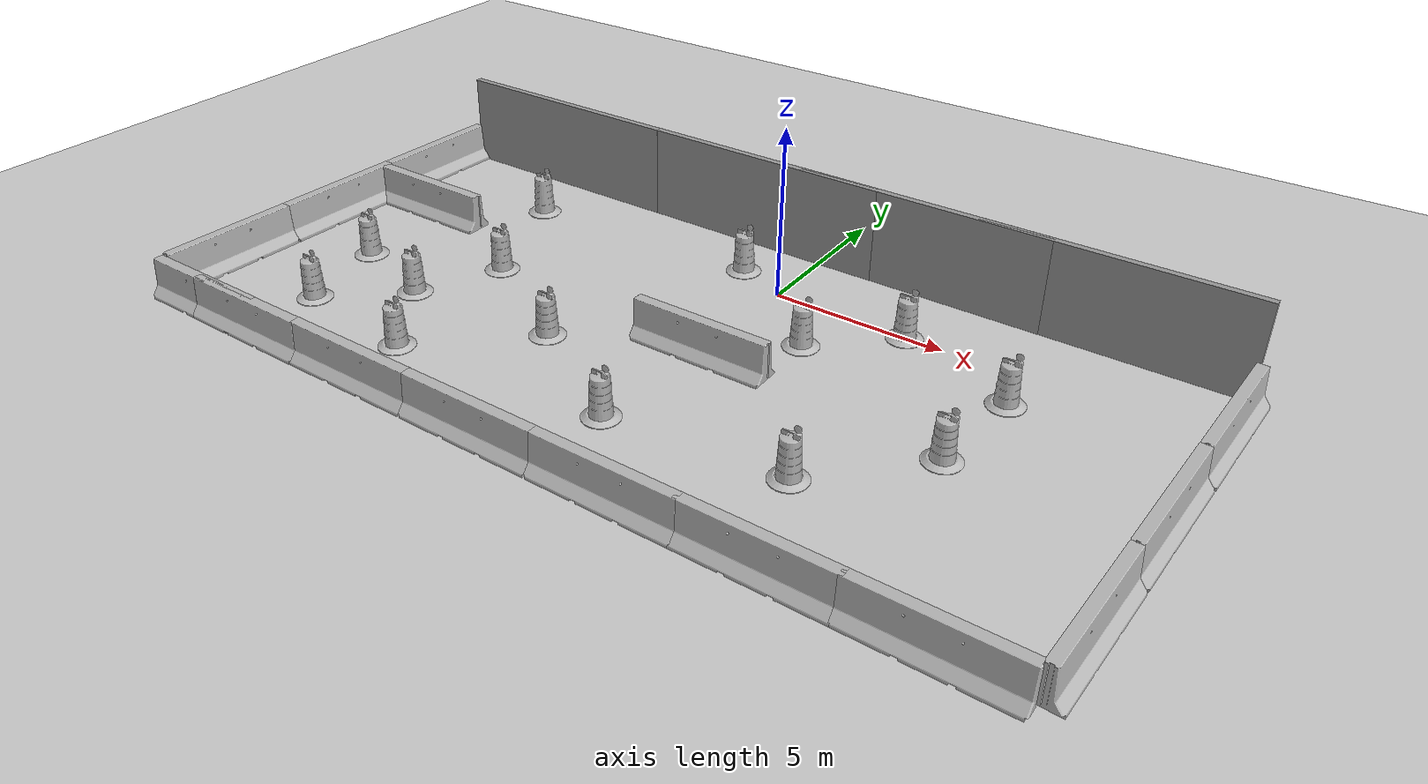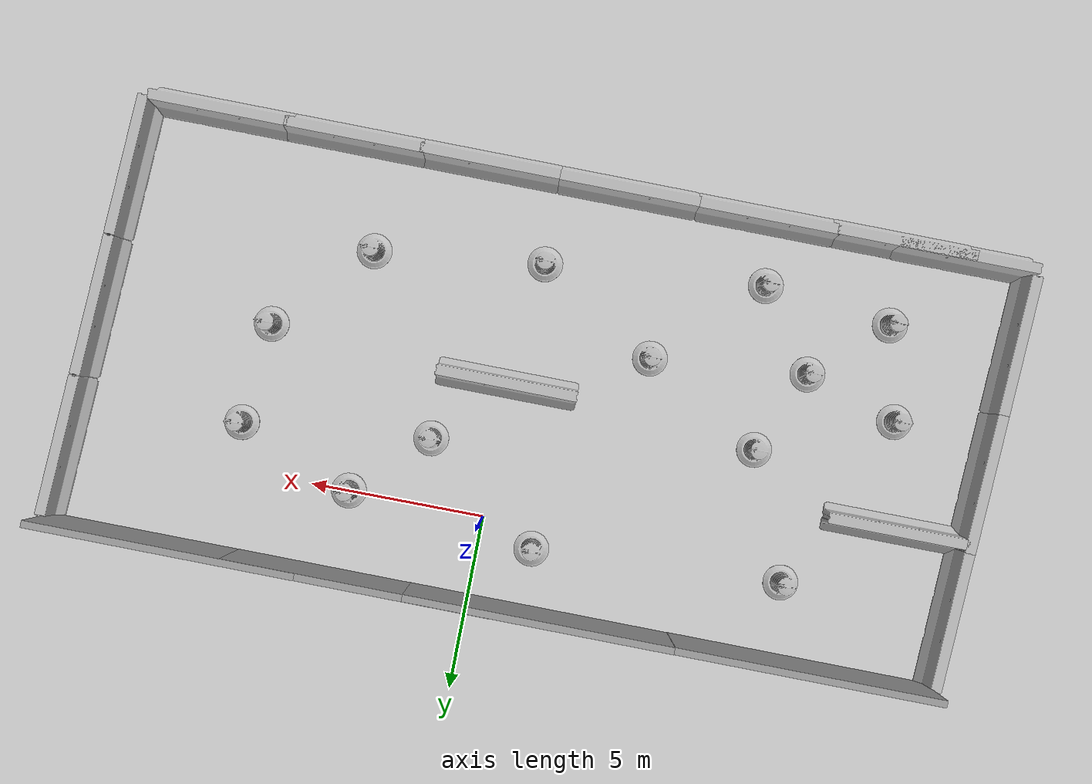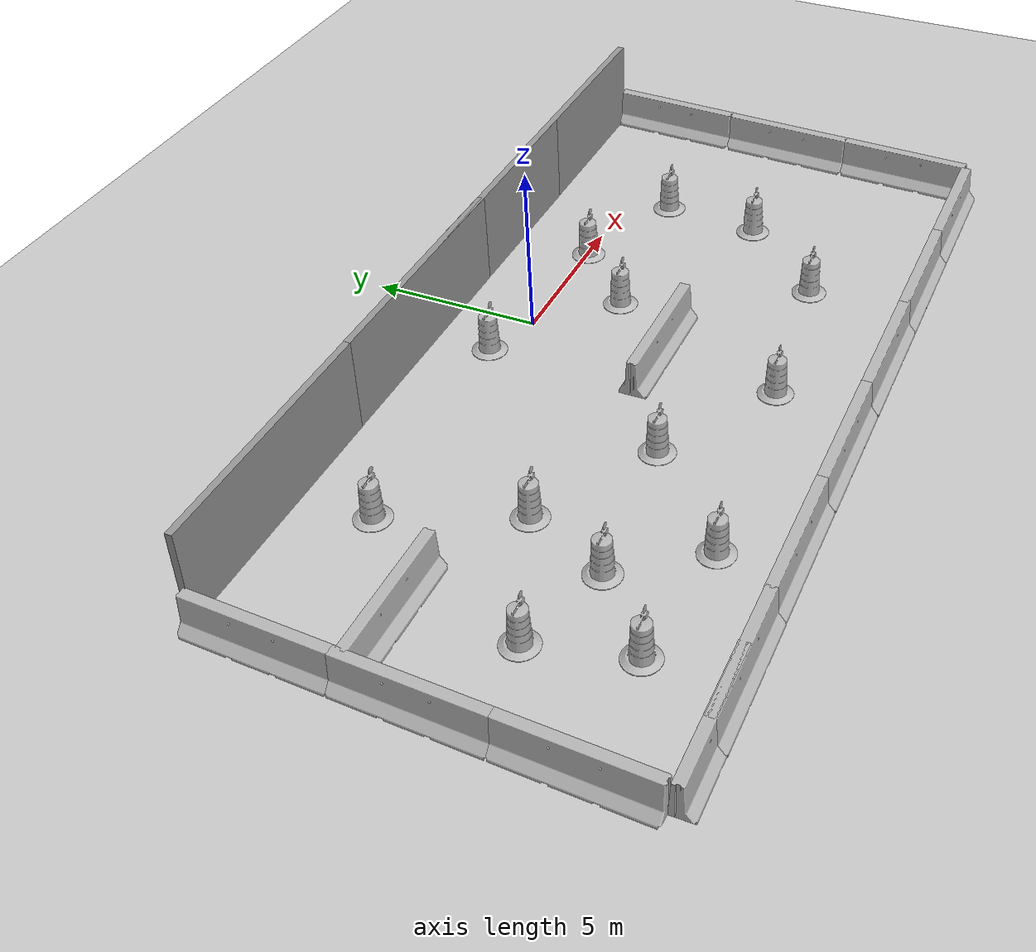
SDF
<sdf version="1.7">
 <world name="default">
  <light name="sun" type="directional">
   <pose>0 0 10 0 -0 0</pose>
   <diffuse>0.8 0.8 0.8 1</diffuse>
   <specular>0.2 0.2 0.2 1</specular>
   <attenuation>
    <range>1000</range>
    <constant>0.9</constant>
    <linear>0.01</linear>
    <quadratic>0.001</quadratic>
   </attenuation>
   <direction>-0.5 0.1 -0.9</direction>
   <spot><inner_angle>0</inner_angle><outer_angle>0</outer_angle><falloff>0</falloff></spot>
  </light>
  <model name="ground_plane">
   <static>1</static>
   <link name="link">
    <collision name="collision">
     <geometry><plane><normal>0 0 1</normal><size>100 100</size></plane></geometry>
     <surface><friction><ode><mu>100</mu><mu2>50</mu2></ode></friction></surface>
    </collision>
    <visual name="visual">
     <cast_shadows>0</cast_shadows>
     <geometry><plane><normal>0 0 1</normal><size>100 100</size></plane></geometry>
     <material>
      <script><uri>file://media/materials/scripts/gazebo.material</uri><name>Gazebo/Grey</name></script>
     </material>
    </visual>
    <velocity_decay><linear>0</linear><angular>0</angular></velocity_decay>
   </link>
  </model>
  <physics type="ode">
   <max_step_size>0.001</max_step_size>
   <real_time_factor>1</real_time_factor>
   <real_time_update_rate>1000</real_time_update_rate>
  </physics>
  <scene><ambient>0.4 0.4 0.4 1</ambient><background>0.7 0.7 0.7 1</background><shadows>1</shadows></scene>
  <spherical_coordinates>
   <surface_model>EARTH_WGS84</surface_model>
   <latitude_deg>0</latitude_deg>
   <longitude_deg>0</longitude_deg>
   <elevation>0</elevation>
   <heading_deg>0</heading_deg>
  </spherical_coordinates>
  <model name="Construction Barrel">
   <link name="link">
    <inertial>
     <pose>0 0 0.4 0 -0 0</pose>
     <mass>500</mass>
     <inertia><ixx>51.2096</ixx><iyy>51.2096</iyy><izz>25</izz><ixy>0</ixy><ixz>0</ixz><iyz>0</iyz></inertia>
    </inertial>
    <collision name="collision">
     <geometry><mesh><uri>model://construction_barrel/meshes/construction_barrel.dae</uri></mesh></geometry>
    </collision>
    <visual name="visual">
     <geometry><mesh><uri>model://construction_barrel/meshes/construction_barrel.dae</uri></mesh></geometry>
    </visual>
    <velocity_decay><linear>0</linear><angular>0</angular></velocity_decay>
   </link>
   <pose>-1.55017 0.617429 -2e-06 6e-06 2e-06 -0.002034</pose>
   <static>0</static>
  </model>
  <model name="Construction Barrel_0">
   <link name="link">
    <inertial>
     <pose>0 0 0.4 0 -0 0</pose>
     <mass>500</mass>
     <inertia><ixx>51.2096</ixx><iyy>51.2096</iyy><izz>25</izz><ixy>0</ixy><ixz>0</ixz><iyz>0</iyz></inertia>
    </inertial>
    <collision name="collision">
     <geometry><mesh><uri>model://construction_barrel/meshes/construction_barrel.dae</uri></mesh></geometry>
    </collision>
    <visual name="visual">
     <geometry><mesh><uri>model://construction_barrel/meshes/construction_barrel.dae</uri></mesh></geometry>
    </visual>
    <velocity_decay><linear>0</linear><angular>0</angular></velocity_decay>
   </link>
   <pose>4.51376 -6.91204 -3e-06 3e-06 -6e-06 -0.002048</pose>
   <static>0</static>
  </model>
  <model name="Construction Barrel_3">
   <link name="link">
    <inertial>
     <pose>0 0 0.4 0 -0 0</pose>
     <mass>500</mass>
     <inertia><ixx>51.2096</ixx><iyy>51.2096</iyy><izz>25</izz><ixy>0</ixy><ixz>0</ixz><iyz>0</iyz></inertia>
    </inertial>
    <collision name="collision">
     <geometry><mesh><uri>model://construction_barrel/meshes/construction_barrel.dae</uri></mesh></geometry>
    </collision>
    <visual name="visual">
     <geometry><mesh><uri>model://construction_barrel/meshes/construction_barrel.dae</uri></mesh></geometry>
    </visual>
    <velocity_decay><linear>0</linear><angular>0</angular></velocity_decay>
   </link>
   <pose>7.31122 -1.35796 -2e-06 -1e-06 -7e-06 -0.001846</pose>
   <static>0</static>
  </model>
  <model name="Construction Barrel_5">
   <link name="link">
    <inertial>
     <pose>0 0 0.4 0 -0 0</pose>
     <mass>500</mass>
     <inertia><ixx>51.2096</ixx><iyy>51.2096</iyy><izz>25</izz><ixy>0</ixy><ixz>0</ixz><iyz>0</iyz></inertia>
    </inertial>
    <collision name="collision">
     <geometry><mesh><uri>model://construction_barrel/meshes/construction_barrel.dae</uri></mesh></geometry>
    </collision>
    <visual name="visual">
     <geometry><mesh><uri>model://construction_barrel/meshes/construction_barrel.dae</uri></mesh></geometry>
    </visual>
    <velocity_decay><linear>0</linear><angular>0</angular></velocity_decay>
   </link>
   <pose>-7.29418 -3.4004 -3e-06 3e-06 -6e-06 -0.001679</pose>
   <static>0</static>
  </model>
  <model name="Construction Barrel_7">
   <link name="link">
    <inertial>
     <pose>0 0 0.4 0 -0 0</pose>
     <mass>500</mass>
     <inertia><ixx>51.2096</ixx><iyy>51.2096</iyy><izz>25</izz><ixy>0</ixy><ixz>0</ixz><iyz>0</iyz></inertia>
    </inertial>
    <collision name="collision">
     <geometry><mesh><uri>model://construction_barrel/meshes/construction_barrel.dae</uri></mesh></geometry>
    </collision>
    <visual name="visual">
     <geometry><mesh><uri>model://construction_barrel/meshes/construction_barrel.dae</uri></mesh></geometry>
    </visual>
    <velocity_decay><linear>0</linear><angular>0</angular></velocity_decay>
   </link>
   <pose>-11.0942 -4.95858 -4e-06 5e-06 9e-06 -0.001599</pose>
   <static>0</static>
  </model>
  <model name="Construction Barrel_8">
   <link name="link">
    <inertial>
     <pose>0 0 0.4 0 -0 0</pose>
     <mass>500</mass>
     <inertia><ixx>51.2096</ixx><iyy>51.2096</iyy><izz>25</izz><ixy>0</ixy><ixz>0</ixz><iyz>0</iyz></inertia>
    </inertial>
    <collision name="collision">
     <geometry><mesh><uri>model://construction_barrel/meshes/construction_barrel.dae</uri></mesh></geometry>
    </collision>
    <visual name="visual">
     <geometry><mesh><uri>model://construction_barrel/meshes/construction_barrel.dae</uri></mesh></geometry>
    </visual>
    <velocity_decay><linear>0</linear><angular>0</angular></velocity_decay>
   </link>
   <pose>1.88274 -1.94441 0 0 0 -0.001545</pose>
   <static>0</static>
  </model>
  <model name="Construction Barrel_10">
   <link name="link">
    <inertial>
     <pose>0 0 0.4 0 -0 0</pose>
     <mass>500</mass>
     <inertia><ixx>51.2096</ixx><iyy>51.2096</iyy><izz>25</izz><ixy>0</ixy><ixz>0</ixz><iyz>0</iyz></inertia>
    </inertial>
    <collision name="collision">
     <geometry><mesh><uri>model://construction_barrel/meshes/construction_barrel.dae</uri></mesh></geometry>
    </collision>
    <visual name="visual">
     <geometry><mesh><uri>model://construction_barrel/meshes/construction_barrel.dae</uri></mesh></geometry>
    </visual>
    <velocity_decay><linear>0</linear><angular>0</angular></velocity_decay>
   </link>
   <pose>-0.376544 -7.48327 -3e-06 -2e-06 9e-06 -0.001422</pose>
   <static>0</static>
  </model>
  <model name="Construction Barrel_12">
   <link name="link">
    <inertial>
     <pose>0 0 0.4 0 -0 0</pose>
     <mass>500</mass>
     <inertia><ixx>51.2096</ixx><iyy>51.2096</iyy><izz>25</izz><ixy>0</ixy><ixz>0</ixz><iyz>0</iyz></inertia>
    </inertial>
    <collision name="collision">
     <geometry><mesh><uri>model://construction_barrel/meshes/construction_barrel.dae</uri></mesh></geometry>
    </collision>
    <visual name="visual">
     <geometry><mesh><uri>model://construction_barrel/meshes/construction_barrel.dae</uri></mesh></geometry>
    </visual>
    <velocity_decay><linear>0</linear><angular>0</angular></velocity_decay>
   </link>
   <pose>-8.38586 -5.82203 1e-06 -1e-06 -2e-06 -0.001309</pose>
   <static>0</static>
  </model>
  <model name="Construction Barrel_13">
   <link name="link">
    <inertial>
     <pose>0 0 0.4 0 -0 0</pose>
     <mass>500</mass>
     <inertia><ixx>51.2096</ixx><iyy>51.2096</iyy><izz>25</izz><ixy>0</ixy><ixz>0</ixz><iyz>0</iyz></inertia>
    </inertial>
    <collision name="collision">
     <geometry><mesh><uri>model://construction_barrel/meshes/construction_barrel.dae</uri></mesh></geometry>
    </collision>
    <visual name="visual">
     <geometry><mesh><uri>model://construction_barrel/meshes/construction_barrel.dae</uri></mesh></geometry>
    </visual>
    <velocity_decay><linear>0</linear><angular>0</angular></velocity_decay>
   </link>
   <pose>7.01502 -4.29452 1e-06 -1e-06 -2e-06 -0.001219</pose>
   <static>0</static>
  </model>
  <model name="Construction Barrel_15">
   <link name="link">
    <inertial>
     <pose>0 0 0.4 0 -0 0</pose>
     <mass>500</mass>
     <inertia><ixx>51.2096</ixx><iyy>51.2096</iyy><izz>25</izz><ixy>0</ixy><ixz>0</ixz><iyz>0</iyz></inertia>
    </inertial>
    <collision name="collision">
     <geometry><mesh><uri>model://construction_barrel/meshes/construction_barrel.dae</uri></mesh></geometry>
    </collision>
    <visual name="visual">
     <geometry><mesh><uri>model://construction_barrel/meshes/construction_barrel.dae</uri></mesh></geometry>
    </visual>
    <velocity_decay><linear>0</linear><angular>0</angular></velocity_decay>
   </link>
   <pose>-6.72385 -8.08925 1e-06 -1e-06 -2e-06 -0.00112</pose>
   <static>0</static>
  </model>
  <model name="Construction Barrel_16">
   <link name="link">
    <inertial>
     <pose>0 0 0.4 0 -0 0</pose>
     <mass>500</mass>
     <inertia><ixx>51.2096</ixx><iyy>51.2096</iyy><izz>25</izz><ixy>0</ixy><ixz>0</ixz><iyz>0</iyz></inertia>
    </inertial>
    <collision name="collision">
     <geometry><mesh><uri>model://construction_barrel/meshes/construction_barrel.dae</uri></mesh></geometry>
    </collision>
    <visual name="visual">
     <geometry><mesh><uri>model://construction_barrel/meshes/construction_barrel.dae</uri></mesh></geometry>
    </visual>
    <velocity_decay><linear>0</linear><angular>0</angular></velocity_decay>
   </link>
   <pose>-8.76802 0.196695 1e-06 -1e-06 -2e-06 -0.001057</pose>
   <static>0</static>
  </model>
  <model name="jersey_barrier">
   <static>1</static>
   <link name="link">
    <visual name="visual">
     <geometry><mesh><uri>model://jersey_barrier/meshes/jersey_barrier.dae</uri></mesh></geometry>
    </visual>
    <collision name="upright">
     <pose>0 0 0.5715 0 -0 0</pose>
     <geometry><box><size>4.06542 0.3063 1.143</size></box></geometry>
    </collision>
    <collision name="base">
     <pose>0 0 0.032258 0 -0 0</pose>
     <geometry><box><size>4.06542 0.8107 0.064516</size></box></geometry>
    </collision>
    <collision name="base2">
     <pose>0 0 0.1 0 -0 0</pose>
     <geometry><box><size>4.06542 0.65 0.1</size></box></geometry>
    </collision>
    <collision name="base3">
     <pose>0 0 0.2 0 -0 0</pose>
     <geometry><box><size>4.06542 0.5 0.1</size></box></geometry>
    </collision>
    <collision name="left-angle">
     <pose>0 -0.224 0.2401 0.9 -0 0</pose>
     <geometry><box><size>4.06542 0.5 0.064516</size></box></geometry>
    </collision>
    <collision name="right-angle">
     <pose>0 0.224 0.2401 -0.9 0 0</pose>
     <geometry><box><size>4.06542 0.5 0.064516</size></box></geometry>
    </collision>
    <velocity_decay><linear>0</linear><angular>0</angular></velocity_decay>
   </link>
   <pose>0.038315 -3.90392 0 0 -0 0</pose>
  </model>
  <model name="jersey_barrier_0">
   <static>1</static>
   <link name="link">
    <visual name="visual">
     <geometry><mesh><uri>model://jersey_barrier/meshes/jersey_barrier.dae</uri></mesh></geometry>
    </visual>
    <collision name="upright">
     <pose>0 0 0.5715 0 -0 0</pose>
     <geometry><box><size>4.06542 0.3063 1.143</size></box></geometry>
    </collision>
    <collision name="base">
     <pose>0 0 0.032258 0 -0 0</pose>
     <geometry><box><size>4.06542 0.8107 0.064516</size></box></geometry>
    </collision>
    <collision name="base2">
     <pose>0 0 0.1 0 -0 0</pose>
     <geometry><box><size>4.06542 0.65 0.1</size></box></geometry>
    </collision>
    <collision name="base3">
     <pose>0 0 0.2 0 -0 0</pose>
     <geometry><box><size>4.06542 0.5 0.1</size></box></geometry>
    </collision>
    <collision name="left-angle">
     <pose>0 -0.224 0.2401 0.9 -0 0</pose>
     <geometry><box><size>4.06542 0.5 0.064516</size></box></geometry>
    </collision>
    <collision name="right-angle">
     <pose>0 0.224 0.2401 -0.9 0 0</pose>
     <geometry><box><size>4.06542 0.5 0.064516</size></box></geometry>
    </collision>
    <velocity_decay><linear>0</linear><angular>0</angular></velocity_decay>
   </link>
   <pose>-10.2697 -9.94343 0 0 -0 0</pose>
  </model>
  <model name="jersey_barrier_2">
   <static>1</static>
   <link name="link">
    <visual name="visual">
     <geometry><mesh><uri>model://jersey_barrier/meshes/jersey_barrier.dae</uri></mesh></geometry>
    </visual>
    <collision name="upright">
     <pose>0 0 0.5715 0 -0 0</pose>
     <geometry><box><size>4.06542 0.3063 1.143</size></box></geometry>
    </collision>
    <collision name="base">
     <pose>0 0 0.032258 0 -0 0</pose>
     <geometry><box><size>4.06542 0.8107 0.064516</size></box></geometry>
    </collision>
    <collision name="base2">
     <pose>0 0 0.1 0 -0 0</pose>
     <geometry><box><size>4.06542 0.65 0.1</size></box></geometry>
    </collision>
    <collision name="base3">
     <pose>0 0 0.2 0 -0 0</pose>
     <geometry><box><size>4.06542 0.5 0.1</size></box></geometry>
    </collision>
    <collision name="left-angle">
     <pose>0 -0.224 0.2401 0.9 -0 0</pose>
     <geometry><box><size>4.06542 0.5 0.064516</size></box></geometry>
    </collision>
    <collision name="right-angle">
     <pose>0 0.224 0.2401 -0.9 0 0</pose>
     <geometry><box><size>4.06542 0.5 0.064516</size></box></geometry>
    </collision>
    <velocity_decay><linear>0</linear><angular>0</angular></velocity_decay>
   </link>
   <pose>-6.33026 -9.93564 0 0 -0 0</pose>
  </model>
  <model name="jersey_barrier_3">
   <static>1</static>
   <link name="link">
    <visual name="visual">
     <geometry><mesh><uri>model://jersey_barrier/meshes/jersey_barrier.dae</uri></mesh></geometry>
    </visual>
    <collision name="upright">
     <pose>0 0 0.5715 0 -0 0</pose>
     <geometry><box><size>4.06542 0.3063 1.143</size></box></geometry>
    </collision>
    <collision name="base">
     <pose>0 0 0.032258 0 -0 0</pose>
     <geometry><box><size>4.06542 0.8107 0.064516</size></box></geometry>
    </collision>
    <collision name="base2">
     <pose>0 0 0.1 0 -0 0</pose>
     <geometry><box><size>4.06542 0.65 0.1</size></box></geometry>
    </collision>
    <collision name="base3">
     <pose>0 0 0.2 0 -0 0</pose>
     <geometry><box><size>4.06542 0.5 0.1</size></box></geometry>
    </collision>
    <collision name="left-angle">
     <pose>0 -0.224 0.2401 0.9 -0 0</pose>
     <geometry><box><size>4.06542 0.5 0.064516</size></box></geometry>
    </collision>
    <collision name="right-angle">
     <pose>0 0.224 0.2401 -0.9 0 0</pose>
     <geometry><box><size>4.06542 0.5 0.064516</size></box></geometry>
    </collision>
    <velocity_decay><linear>0</linear><angular>0</angular></velocity_decay>
   </link>
   <pose>-2.32728 -9.94194 0 0 -0 0</pose>
  </model>
  <gravity>0 0 -9.8</gravity>
  <magnetic_field>6e-06 2.3e-05 -4.2e-05</magnetic_field>
  <atmosphere type="adiabatic"/>
  <model name="jersey_barrier_3_clone">
   <static>1</static>
   <link name="link">
    <visual name="visual">
     <geometry><mesh><uri>model://jersey_barrier/meshes/jersey_barrier.dae</uri></mesh></geometry>
    </visual>
    <collision name="upright">
     <pose>0 0 0.5715 0 -0 0</pose>
     <geometry><box><size>4.06542 0.3063 1.143</size></box></geometry>
    </collision>
    <collision name="base">
     <pose>0 0 0.032258 0 -0 0</pose>
     <geometry><box><size>4.06542 0.8107 0.064516</size></box></geometry>
    </collision>
    <collision name="base2">
     <pose>0 0 0.1 0 -0 0</pose>
     <geometry><box><size>4.06542 0.65 0.1</size></box></geometry>
    </collision>
    <collision name="base3">
     <pose>0 0 0.2 0 -0 0</pose>
     <geometry><box><size>4.06542 0.5 0.1</size></box></geometry>
    </collision>
    <collision name="left-angle">
     <pose>0 -0.224 0.2401 0.9 -0 0</pose>
     <geometry><box><size>4.06542 0.5 0.064516</size></box></geometry>
    </collision>
    <collision name="right-angle">
     <pose>0 0.224 0.2401 -0.9 0 0</pose>
     <geometry><box><size>4.06542 0.5 0.064516</size></box></geometry>
    </collision>
    <velocity_decay><linear>0</linear><angular>0</angular></velocity_decay>
   </link>
   <pose>1.67879 -9.94628 0 0 -0 0</pose>
  </model>
  <model name="jersey_barrier_3_clone_0">
   <static>1</static>
   <link name="link">
    <visual name="visual">
     <geometry><mesh><uri>model://jersey_barrier/meshes/jersey_barrier.dae</uri></mesh></geometry>
    </visual>
    <collision name="upright">
     <pose>0 0 0.5715 0 -0 0</pose>
     <geometry><box><size>4.06542 0.3063 1.143</size></box></geometry>
    </collision>
    <collision name="base">
     <pose>0 0 0.032258 0 -0 0</pose>
     <geometry><box><size>4.06542 0.8107 0.064516</size></box></geometry>
    </collision>
    <collision name="base2">
     <pose>0 0 0.1 0 -0 0</pose>
     <geometry><box><size>4.06542 0.65 0.1</size></box></geometry>
    </collision>
    <collision name="base3">
     <pose>0 0 0.2 0 -0 0</pose>
     <geometry><box><size>4.06542 0.5 0.1</size></box></geometry>
    </collision>
    <collision name="left-angle">
     <pose>0 -0.224 0.2401 0.9 -0 0</pose>
     <geometry><box><size>4.06542 0.5 0.064516</size></box></geometry>
    </collision>
    <collision name="right-angle">
     <pose>0 0.224 0.2401 -0.9 0 0</pose>
     <geometry><box><size>4.06542 0.5 0.064516</size></box></geometry>
    </collision>
    <velocity_decay><linear>0</linear><angular>0</angular></velocity_decay>
   </link>
   <pose>5.56854 -9.94442 0 0 -0 0</pose>
  </model>
  <model name="jersey_barrier_3_clone_1">
   <static>1</static>
   <link name="link">
    <visual name="visual">
     <geometry><mesh><uri>model://jersey_barrier/meshes/jersey_barrier.dae</uri></mesh></geometry>
    </visual>
    <collision name="upright">
     <pose>0 0 0.5715 0 -0 0</pose>
     <geometry><box><size>4.06542 0.3063 1.143</size></box></geometry>
    </collision>
    <collision name="base">
     <pose>0 0 0.032258 0 -0 0</pose>
     <geometry><box><size>4.06542 0.8107 0.064516</size></box></geometry>
    </collision>
    <collision name="base2">
     <pose>0 0 0.1 0 -0 0</pose>
     <geometry><box><size>4.06542 0.65 0.1</size></box></geometry>
    </collision>
    <collision name="base3">
     <pose>0 0 0.2 0 -0 0</pose>
     <geometry><box><size>4.06542 0.5 0.1</size></box></geometry>
    </collision>
    <collision name="left-angle">
     <pose>0 -0.224 0.2401 0.9 -0 0</pose>
     <geometry><box><size>4.06542 0.5 0.064516</size></box></geometry>
    </collision>
    <collision name="right-angle">
     <pose>0 0.224 0.2401 -0.9 0 0</pose>
     <geometry><box><size>4.06542 0.5 0.064516</size></box></geometry>
    </collision>
    <velocity_decay><linear>0</linear><angular>0</angular></velocity_decay>
   </link>
   <pose>9.46495 -9.94531 0 0 -0 0</pose>
  </model>
  <model name="jersey_barrier_4_clone">
   <static>1</static>
   <link name="link">
    <visual name="visual">
     <geometry><mesh><uri>model://jersey_barrier/meshes/jersey_barrier.dae</uri></mesh></geometry>
    </visual>
    <collision name="upright">
     <pose>0 0 0.5715 0 -0 0</pose>
     <geometry><box><size>4.06542 0.3063 1.143</size></box></geometry>
    </collision>
    <collision name="base">
     <pose>0 0 0.032258 0 -0 0</pose>
     <geometry><box><size>4.06542 0.8107 0.064516</size></box></geometry>
    </collision>
    <collision name="base2">
     <pose>0 0 0.1 0 -0 0</pose>
     <geometry><box><size>4.06542 0.65 0.1</size></box></geometry>
    </collision>
    <collision name="base3">
     <pose>0 0 0.2 0 -0 0</pose>
     <geometry><box><size>4.06542 0.5 0.1</size></box></geometry>
    </collision>
    <collision name="left-angle">
     <pose>0 -0.224 0.2401 0.9 -0 0</pose>
     <geometry><box><size>4.06542 0.5 0.064516</size></box></geometry>
    </collision>
    <collision name="right-angle">
     <pose>0 0.224 0.2401 -0.9 0 0</pose>
     <geometry><box><size>4.06542 0.5 0.064516</size></box></geometry>
    </collision>
    <velocity_decay><linear>0</linear><angular>0</angular></velocity_decay>
   </link>
   <pose>11.6938 -7.88156 0 0 -0 1.52298</pose>
  </model>
  <model name="jersey_barrier_4_clone_0">
   <static>1</static>
   <link name="link">
    <visual name="visual">
     <geometry><mesh><uri>model://jersey_barrier/meshes/jersey_barrier.dae</uri></mesh></geometry>
    </visual>
    <collision name="upright">
     <pose>0 0 0.5715 0 -0 0</pose>
     <geometry><box><size>4.06542 0.3063 1.143</size></box></geometry>
    </collision>
    <collision name="base">
     <pose>0 0 0.032258 0 -0 0</pose>
     <geometry><box><size>4.06542 0.8107 0.064516</size></box></geometry>
    </collision>
    <collision name="base2">
     <pose>0 0 0.1 0 -0 0</pose>
     <geometry><box><size>4.06542 0.65 0.1</size></box></geometry>
    </collision>
    <collision name="base3">
     <pose>0 0 0.2 0 -0 0</pose>
     <geometry><box><size>4.06542 0.5 0.1</size></box></geometry>
    </collision>
    <collision name="left-angle">
     <pose>0 -0.224 0.2401 0.9 -0 0</pose>
     <geometry><box><size>4.06542 0.5 0.064516</size></box></geometry>
    </collision>
    <collision name="right-angle">
     <pose>0 0.224 0.2401 -0.9 0 0</pose>
     <geometry><box><size>4.06542 0.5 0.064516</size></box></geometry>
    </collision>
    <velocity_decay><linear>0</linear><angular>0</angular></velocity_decay>
   </link>
   <pose>11.8844 -3.82644 0 0 -0 1.52298</pose>
  </model>
  <model name="jersey_barrier_4_clone_1">
   <static>1</static>
   <link name="link">
    <visual name="visual">
     <geometry><mesh><uri>model://jersey_barrier/meshes/jersey_barrier.dae</uri></mesh></geometry>
    </visual>
    <collision name="upright">
     <pose>0 0 0.5715 0 -0 0</pose>
     <geometry><box><size>4.06542 0.3063 1.143</size></box></geometry>
    </collision>
    <collision name="base">
     <pose>0 0 0.032258 0 -0 0</pose>
     <geometry><box><size>4.06542 0.8107 0.064516</size></box></geometry>
    </collision>
    <collision name="base2">
     <pose>0 0 0.1 0 -0 0</pose>
     <geometry><box><size>4.06542 0.65 0.1</size></box></geometry>
    </collision>
    <collision name="base3">
     <pose>0 0 0.2 0 -0 0</pose>
     <geometry><box><size>4.06542 0.5 0.1</size></box></geometry>
    </collision>
    <collision name="left-angle">
     <pose>0 -0.224 0.2401 0.9 -0 0</pose>
     <geometry><box><size>4.06542 0.5 0.064516</size></box></geometry>
    </collision>
    <collision name="right-angle">
     <pose>0 0.224 0.2401 -0.9 0 0</pose>
     <geometry><box><size>4.06542 0.5 0.064516</size></box></geometry>
    </collision>
    <velocity_decay><linear>0</linear><angular>0</angular></velocity_decay>
   </link>
   <pose>12.0852 0.23413 0 0 -0 1.52298</pose>
  </model>
  <model name="jersey_barrier_4_clone_2">
   <static>1</static>
   <link name="link">
    <visual name="visual">
     <geometry><mesh><uri>model://jersey_barrier/meshes/jersey_barrier.dae</uri></mesh></geometry>
    </visual>
    <collision name="upright">
     <pose>0 0 0.5715 0 -0 0</pose>
     <geometry><box><size>4.06542 0.3063 1.143</size></box></geometry>
    </collision>
    <collision name="base">
     <pose>0 0 0.032258 0 -0 0</pose>
     <geometry><box><size>4.06542 0.8107 0.064516</size></box></geometry>
    </collision>
    <collision name="base2">
     <pose>0 0 0.1 0 -0 0</pose>
     <geometry><box><size>4.06542 0.65 0.1</size></box></geometry>
    </collision>
    <collision name="base3">
     <pose>0 0 0.2 0 -0 0</pose>
     <geometry><box><size>4.06542 0.5 0.1</size></box></geometry>
    </collision>
    <collision name="left-angle">
     <pose>0 -0.224 0.2401 0.9 -0 0</pose>
     <geometry><box><size>4.06542 0.5 0.064516</size></box></geometry>
    </collision>
    <collision name="right-angle">
     <pose>0 0.224 0.2401 -0.9 0 0</pose>
     <geometry><box><size>4.06542 0.5 0.064516</size></box></geometry>
    </collision>
    <velocity_decay><linear>0</linear><angular>0</angular></velocity_decay>
   </link>
   <pose>-13.9339 -7.69111 0 0 -0 1.52298</pose>
  </model>
  <model name="jersey_barrier_4_clone_3">
   <static>1</static>
   <link name="link">
    <visual name="visual">
     <geometry><mesh><uri>model://jersey_barrier/meshes/jersey_barrier.dae</uri></mesh></geometry>
    </visual>
    <collision name="upright">
     <pose>0 0 0.5715 0 -0 0</pose>
     <geometry><box><size>4.06542 0.3063 1.143</size></box></geometry>
    </collision>
    <collision name="base">
     <pose>0 0 0.032258 0 -0 0</pose>
     <geometry><box><size>4.06542 0.8107 0.064516</size></box></geometry>
    </collision>
    <collision name="base2">
     <pose>0 0 0.1 0 -0 0</pose>
     <geometry><box><size>4.06542 0.65 0.1</size></box></geometry>
    </collision>
    <collision name="base3">
     <pose>0 0 0.2 0 -0 0</pose>
     <geometry><box><size>4.06542 0.5 0.1</size></box></geometry>
    </collision>
    <collision name="left-angle">
     <pose>0 -0.224 0.2401 0.9 -0 0</pose>
     <geometry><box><size>4.06542 0.5 0.064516</size></box></geometry>
    </collision>
    <collision name="right-angle">
     <pose>0 0.224 0.2401 -0.9 0 0</pose>
     <geometry><box><size>4.06542 0.5 0.064516</size></box></geometry>
    </collision>
    <velocity_decay><linear>0</linear><angular>0</angular></velocity_decay>
   </link>
   <pose>-13.7439 -3.69709 0 0 -0 1.52298</pose>
  </model>
  <model name="jersey_barrier_4_clone_4">
   <static>1</static>
   <link name="link">
    <visual name="visual">
     <geometry><mesh><uri>model://jersey_barrier/meshes/jersey_barrier.dae</uri></mesh></geometry>
    </visual>
    <collision name="upright">
     <pose>0 0 0.5715 0 -0 0</pose>
     <geometry><box><size>4.06542 0.3063 1.143</size></box></geometry>
    </collision>
    <collision name="base">
     <pose>0 0 0.032258 0 -0 0</pose>
     <geometry><box><size>4.06542 0.8107 0.064516</size></box></geometry>
    </collision>
    <collision name="base2">
     <pose>0 0 0.1 0 -0 0</pose>
     <geometry><box><size>4.06542 0.65 0.1</size></box></geometry>
    </collision>
    <collision name="base3">
     <pose>0 0 0.2 0 -0 0</pose>
     <geometry><box><size>4.06542 0.5 0.1</size></box></geometry>
    </collision>
    <collision name="left-angle">
     <pose>0 -0.224 0.2401 0.9 -0 0</pose>
     <geometry><box><size>4.06542 0.5 0.064516</size></box></geometry>
    </collision>
    <collision name="right-angle">
     <pose>0 0.224 0.2401 -0.9 0 0</pose>
     <geometry><box><size>4.06542 0.5 0.064516</size></box></geometry>
    </collision>
    <velocity_decay><linear>0</linear><angular>0</angular></velocity_decay>
   </link>
   <pose>-13.5466 0.29011 0 0 -0 1.52298</pose>
  </model>
  <model name="grey_wall">
   <static>1</static>
   <link name="link">
    <pose>0 0 1.4 0 -0 0</pose>
    <collision name="collision"><geometry><box><size>7.5 0.2 2.8</size></box></geometry></collision>
    <visual name="visual">
     <cast_shadows>0</cast_shadows>
     <geometry><box><size>7.5 0.2 2.8</size></box></geometry>
     <material>
      <script>
       <uri>model://grey_wall/materials/scripts</uri>
       <uri>model://grey_wall/materials/textures</uri>
       <name>vrc/grey_wall</name>
      </script>
     </material>
    </visual>
   </link>
   <pose>-9.58886 2.32854 0 0 -0 0</pose>
  </model>
  <model name="grey_wall_clone">
   <static>1</static>
   <link name="link">
    <pose>0 0 1.4 0 -0 0</pose>
    <collision name="collision"><geometry><box><size>7.5 0.2 2.8</size></box></geometry></collision>
    <visual name="visual">
     <cast_shadows>0</cast_shadows>
     <geometry><box><size>7.5 0.2 2.8</size></box></geometry>
     <material>
      <script>
       <uri>model://grey_wall/materials/scripts</uri>
       <uri>model://grey_wall/materials/textures</uri>
       <name>vrc/grey_wall</name>
      </script>
     </material>
    </visual>
   </link>
   <pose>-2.0887 2.33596 0 0 -0 0</pose>
  </model>
  <model name="grey_wall_clone_0">
   <static>1</static>
   <link name="link">
    <pose>0 0 1.4 0 -0 0</pose>
    <collision name="collision"><geometry><box><size>7.5 0.2 2.8</size></box></geometry></collision>
    <visual name="visual">
     <cast_shadows>0</cast_shadows>
     <geometry><box><size>7.5 0.2 2.8</size></box></geometry>
     <material>
      <script>
       <uri>model://grey_wall/materials/scripts</uri>
       <uri>model://grey_wall/materials/textures</uri>
       <name>vrc/grey_wall</name>
      </script>
     </material>
    </visual>
   </link>
   <pose>8.38076 2.34595 0 0 -0 0</pose>
  </model>
  <model name="Construction Barrel_12_clone">
   <link name="link">
    <inertial>
     <pose>0 0 0.4 0 -0 0</pose>
     <mass>500</mass>
     <inertia><ixx>51.2096</ixx><iyy>51.2096</iyy><izz>25</izz><ixy>0</ixy><ixz>0</ixz><iyz>0</iyz></inertia>
    </inertial>
    <collision name="collision">
     <geometry><mesh><uri>model://construction_barrel/meshes/construction_barrel.dae</uri></mesh></geometry>
    </collision>
    <visual name="visual">
     <geometry><mesh><uri>model://construction_barrel/meshes/construction_barrel.dae</uri></mesh></geometry>
    </visual>
    <velocity_decay><linear>0</linear><angular>0</angular></velocity_decay>
   </link>
   <pose>-10.4435 -7.66226 1e-06 -1e-06 -2e-06 -0.001309</pose>
   <static>0</static>
  </model>
  <model name="Construction Barrel_12_clone_0">
   <link name="link">
    <inertial>
     <pose>0 0 0.4 0 -0 0</pose>
     <mass>500</mass>
     <inertia><ixx>51.2096</ixx><iyy>51.2096</iyy><izz>25</izz><ixy>0</ixy><ixz>0</ixz><iyz>0</iyz></inertia>
    </inertial>
    <collision name="collision">
     <geometry><mesh><uri>model://construction_barrel/meshes/construction_barrel.dae</uri></mesh></geometry>
    </collision>
    <visual name="visual">
     <geometry><mesh><uri>model://construction_barrel/meshes/construction_barrel.dae</uri></mesh></geometry>
    </visual>
    <velocity_decay><linear>0</linear><angular>0</angular></velocity_decay>
   </link>
   <pose>-3.85206 -5.40087 1e-06 -1e-06 -2e-06 -0.001309</pose>
   <static>0</static>
  </model>
  <model name="Construction Barrel_12_clone_1">
   <link name="link">
    <inertial>
     <pose>0 0 0.4 0 -0 0</pose>
     <mass>500</mass>
     <inertia><ixx>51.2096</ixx><iyy>51.2096</iyy><izz>25</izz><ixy>0</ixy><ixz>0</ixz><iyz>0</iyz></inertia>
    </inertial>
    <collision name="collision">
     <geometry><mesh><uri>model://construction_barrel/meshes/construction_barrel.dae</uri></mesh></geometry>
    </collision>
    <visual name="visual">
     <geometry><mesh><uri>model://construction_barrel/meshes/construction_barrel.dae</uri></mesh></geometry>
    </visual>
    <velocity_decay><linear>0</linear><angular>0</angular></velocity_decay>
   </link>
   <pose>3.91936 -0.016714 1e-06 -1e-06 -2e-06 -0.001309</pose>
   <static>0</static>
  </model>
  <model name="jersey_barrier_clone">
   <static>1</static>
   <link name="link">
    <visual name="visual">
     <geometry><mesh><uri>model://jersey_barrier/meshes/jersey_barrier.dae</uri></mesh></geometry>
    </visual>
    <collision name="upright">
     <pose>0 0 0.5715 0 -0 0</pose>
     <geometry><box><size>4.06542 0.3063 1.143</size></box></geometry>
    </collision>
    <collision name="base">
     <pose>0 0 0.032258 0 -0 0</pose>
     <geometry><box><size>4.06542 0.8107 0.064516</size></box></geometry>
    </collision>
    <collision name="base2">
     <pose>0 0 0.1 0 -0 0</pose>
     <geometry><box><size>4.06542 0.65 0.1</size></box></geometry>
    </collision>
    <collision name="base3">
     <pose>0 0 0.2 0 -0 0</pose>
     <geometry><box><size>4.06542 0.5 0.1</size></box></geometry>
    </collision>
    <collision name="left-angle">
     <pose>0 -0.224 0.2401 0.9 -0 0</pose>
     <geometry><box><size>4.06542 0.5 0.064516</size></box></geometry>
    </collision>
    <collision name="right-angle">
     <pose>0 0.224 0.2401 -0.9 0 0</pose>
     <geometry><box><size>4.06542 0.5 0.064516</size></box></geometry>
    </collision>
    <velocity_decay><linear>0</linear><angular>0</angular></velocity_decay>
   </link>
   <pose>-11.5885 -1.93059 0 0 -0 0</pose>
  </model>
  <model name="grey_wall_clone_0_clone">
   <static>1</static>
   <link name="link">
    <pose>0 0 1.4 0 -0 0</pose>
    <collision name="collision"><geometry><box><size>7.5 0.2 2.8</size></box></geometry></collision>
    <visual name="visual">
     <cast_shadows>0</cast_shadows>
     <geometry><box><size>7.5 0.2 2.8</size></box></geometry>
     <material>
      <script>
       <uri>model://grey_wall/materials/scripts</uri>
       <uri>model://grey_wall/materials/textures</uri>
       <name>vrc/grey_wall</name>
      </script>
     </material>
    </visual>
   </link>
   <pose>2.95097 2.34193 0 0 -0 0</pose>
  </model>
  <model name="jersey_barrier_0_clone">
   <static>1</static>
   <link name="link">
    <visual name="visual">
     <geometry><mesh><uri>model://jersey_barrier/meshes/jersey_barrier.dae</uri></mesh></geometry>
    </visual>
    <collision name="upright">
     <pose>0 0 0.5715 0 -0 0</pose>
     <geometry><box><size>4.06542 0.3063 1.143</size></box></geometry>
    </collision>
    <collision name="base">
     <pose>0 0 0.032258 0 -0 0</pose>
     <geometry><box><size>4.06542 0.8107 0.064516</size></box></geometry>
    </collision>
    <collision name="base2">
     <pose>0 0 0.1 0 -0 0</pose>
     <geometry><box><size>4.06542 0.65 0.1</size></box></geometry>
    </collision>
    <collision name="base3">
     <pose>0 0 0.2 0 -0 0</pose>
     <geometry><box><size>4.06542 0.5 0.1</size></box></geometry>
    </collision>
    <collision name="left-angle">
     <pose>0 -0.224 0.2401 0.9 -0 0</pose>
     <geometry><box><size>4.06542 0.5 0.064516</size></box></geometry>
    </collision>
    <collision name="right-angle">
     <pose>0 0.224 0.2401 -0.9 0 0</pose>
     <geometry><box><size>4.06542 0.5 0.064516</size></box></geometry>
    </collision>
    <velocity_decay><linear>0</linear><angular>0</angular></velocity_decay>
   </link>
   <pose>-12.0621 -9.92848 0 0 -0 0</pose>
  </model>
 </world>
</sdf>
